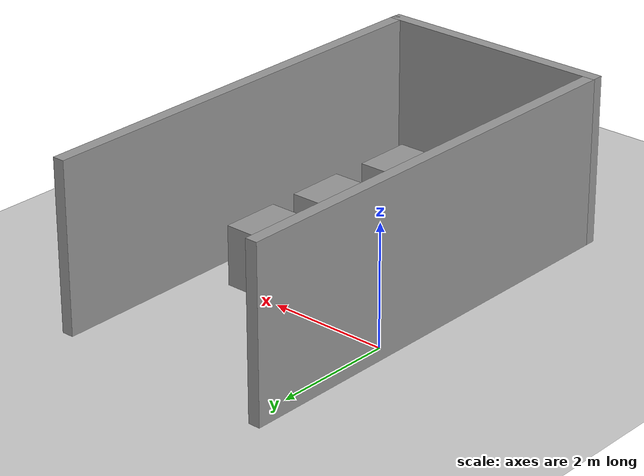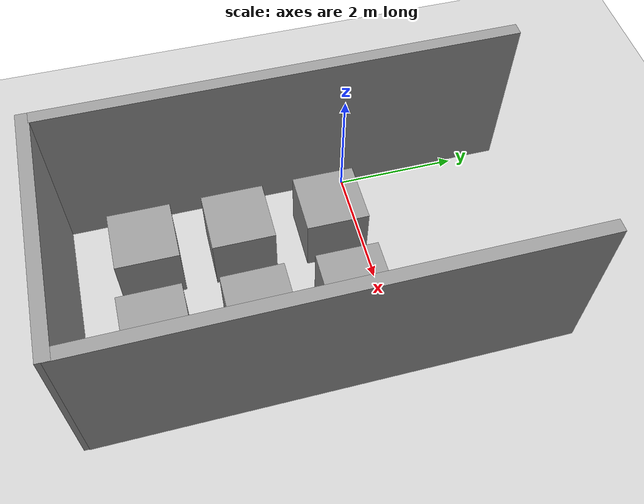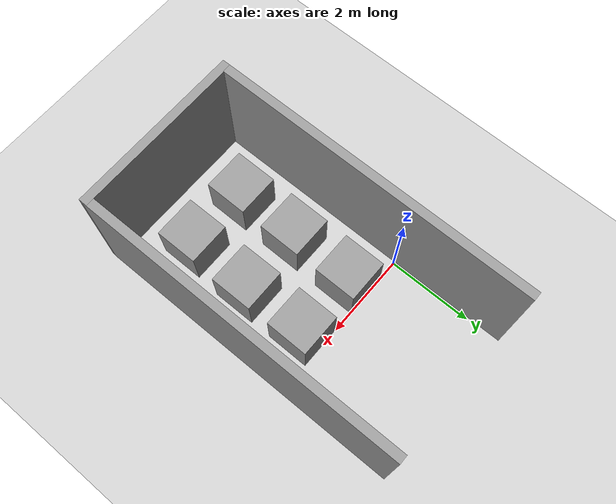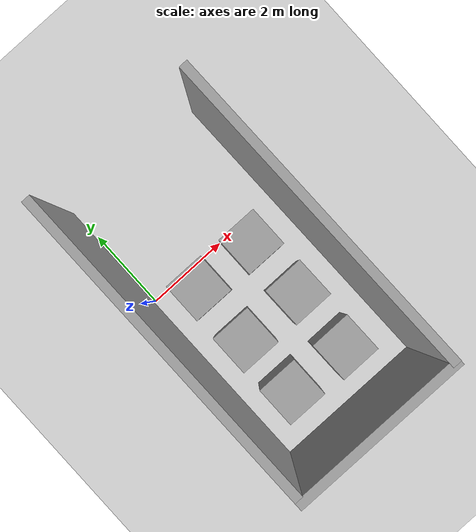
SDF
<sdf version="1.6">
 <world name="default">
  <light name="sun" type="directional">
   <pose>0 0 10 0 -0 0</pose>
   <diffuse>0.8 0.8 0.8 1</diffuse>
   <specular>0.2 0.2 0.2 1</specular>
   <attenuation>
    <range>1000</range>
    <constant>0.9</constant>
    <linear>0.01</linear>
    <quadratic>0.001</quadratic>
   </attenuation>
   <direction>-0.5 0.1 -0.9</direction>
  </light>
  <model name="ground_plane">
   <static>1</static>
   <link name="link">
    <collision name="collision">
     <geometry><plane><normal>0 0 1</normal><size>100 100</size></plane></geometry>
     <surface><friction><ode><mu>100</mu><mu2>50</mu2></ode></friction></surface>
    </collision>
    <visual name="visual">
     <cast_shadows>0</cast_shadows>
     <geometry><plane><normal>0 0 1</normal><size>100 100</size></plane></geometry>
     <material>
      <script><uri>file://media/materials/scripts/gazebo.material</uri><name>Gazebo/Grey</name></script>
     </material>
    </visual>
   </link>
  </model>
  <gravity>0 0 -9.8</gravity>
  <magnetic_field>6e-06 2.3e-05 -4.2e-05</magnetic_field>
  <atmosphere type="adiabatic"/>
  <physics name="default_physics" default="0" type="ode">
   <max_step_size>0.001</max_step_size>
   <real_time_factor>1</real_time_factor>
   <real_time_update_rate>1000</real_time_update_rate>
  </physics>
  <scene><ambient>0.4 0.4 0.4 1</ambient><background>0.7 0.7 0.7 1</background><shadows>1</shadows></scene>
  <audio><device>default</device></audio>
  <spherical_coordinates>
   <surface_model>EARTH_WGS84</surface_model>
   <latitude_deg>0</latitude_deg>
   <longitude_deg>0</longitude_deg>
   <elevation>0</elevation>
   <heading_deg>0</heading_deg>
  </spherical_coordinates>
  <model name="unit_box">
   <pose>1 -0.493799 0.499995 -1e-05 0 0</pose>
   <link name="link">
    <inertial>
     <mass>1</mass>
     <inertia>
      <ixx>0.166667</ixx>
      <ixy>0</ixy>
      <ixz>0</ixz>
      <iyy>0.166667</iyy>
      <iyz>0</iyz>
      <izz>0.166667</izz>
     </inertia>
    </inertial>
    <collision name="collision"><geometry><box><size>1 1 1</size></box></geometry></collision>
    <visual name="visual">
     <geometry><box><size>1 1 1</size></box></geometry>
     <material>
      <script><name>Gazebo/Grey</name><uri>file://media/materials/scripts/gazebo.material</uri></script>
     </material>
    </visual>
   </link>
  </model>
  <model name="unit_box_0">
   <pose>0.999995 -2 0.499995 0 -1e-05 0</pose>
   <link name="link">
    <inertial>
     <mass>1</mass>
     <inertia>
      <ixx>0.166667</ixx>
      <ixy>0</ixy>
      <ixz>0</ixz>
      <iyy>0.166667</iyy>
      <iyz>0</iyz>
      <izz>0.166667</izz>
     </inertia>
    </inertial>
    <collision name="collision"><geometry><box><size>1 1 1</size></box></geometry></collision>
    <visual name="visual">
     <geometry><box><size>1 1 1</size></box></geometry>
     <material>
      <script><name>Gazebo/Grey</name><uri>file://media/materials/scripts/gazebo.material</uri></script>
     </material>
    </visual>
   </link>
  </model>
  <model name="unit_box_1">
   <pose>1 -3.50146 0.499995 -1e-05 0 0</pose>
   <link name="link">
    <inertial>
     <mass>1</mass>
     <inertia>
      <ixx>0.166667</ixx>
      <ixy>0</ixy>
      <ixz>0</ixz>
      <iyy>0.166667</iyy>
      <iyz>0</iyz>
      <izz>0.166667</izz>
     </inertia>
    </inertial>
    <collision name="collision"><geometry><box><size>1 1 1</size></box></geometry></collision>
    <visual name="visual">
     <geometry><box><size>1 1 1</size></box></geometry>
     <material>
      <script><name>Gazebo/Grey</name><uri>file://media/materials/scripts/gazebo.material</uri></script>
     </material>
    </visual>
   </link>
  </model>
  <model name="unit_box_2">
   <pose>2.512 -0.505267 0.499995 0 -1e-05 0</pose>
   <link name="link">
    <inertial>
     <mass>1</mass>
     <inertia>
      <ixx>0.166667</ixx>
      <ixy>0</ixy>
      <ixz>0</ixz>
      <iyy>0.166667</iyy>
      <iyz>0</iyz>
      <izz>0.166667</izz>
     </inertia>
    </inertial>
    <collision name="collision"><geometry><box><size>1 1 1</size></box></geometry></collision>
    <visual name="visual">
     <geometry><box><size>1 1 1</size></box></geometry>
     <material>
      <script><name>Gazebo/Grey</name><uri>file://media/materials/scripts/gazebo.material</uri></script>
     </material>
    </visual>
   </link>
  </model>
  <model name="unit_box_3">
   <pose>2.53013 -1.98967 0.499995 1e-05 -0 0.006442</pose>
   <link name="link">
    <inertial>
     <mass>1</mass>
     <inertia>
      <ixx>0.166667</ixx>
      <ixy>0</ixy>
      <ixz>0</ixz>
      <iyy>0.166667</iyy>
      <iyz>0</iyz>
      <izz>0.166667</izz>
     </inertia>
    </inertial>
    <collision name="collision"><geometry><box><size>1 1 1</size></box></geometry></collision>
    <visual name="visual">
     <geometry><box><size>1 1 1</size></box></geometry>
     <material>
      <script><name>Gazebo/Grey</name><uri>file://media/materials/scripts/gazebo.material</uri></script>
     </material>
    </visual>
   </link>
  </model>
  <model name="unit_box_4">
   <pose>2.49867 -3.54901 0.499995 0 1e-05 0.006063</pose>
   <link name="link">
    <inertial>
     <mass>1</mass>
     <inertia>
      <ixx>0.166667</ixx>
      <ixy>0</ixy>
      <ixz>0</ixz>
      <iyy>0.166667</iyy>
      <iyz>0</iyz>
      <izz>0.166667</izz>
     </inertia>
    </inertial>
    <collision name="collision"><geometry><box><size>1 1 1</size></box></geometry></collision>
    <visual name="visual">
     <geometry><box><size>1 1 1</size></box></geometry>
     <material>
      <script><name>Gazebo/Grey</name><uri>file://media/materials/scripts/gazebo.material</uri></script>
     </material>
    </visual>
   </link>
  </model>
  <model name="grey_wall">
   <static>1</static>
   <link name="link">
    <pose>0 0 1.4 0 -0 0</pose>
    <collision name="collision"><geometry><box><size>7.5 0.2 2.8</size></box></geometry></collision>
    <visual name="visual">
     <cast_shadows>0</cast_shadows>
     <geometry><box><size>7.5 0.2 2.8</size></box></geometry>
     <material>
      <script>
       <uri>model://grey_wall/materials/scripts</uri>
       <uri>model://grey_wall/materials/textures</uri>
       <name>vrc/grey_wall</name>
      </script>
     </material>
    </visual>
   </link>
   <pose>3.68862 -1.05641 0 0 -0 1.57723</pose>
  </model>
  <model name="grey_wall_1">
   <static>1</static>
   <link name="link">
    <pose>0 0 1.4 0 -0 0</pose>
    <collision name="collision"><geometry><box><size>7.5 0.2 2.8</size></box></geometry></collision>
    <visual name="visual">
     <cast_shadows>0</cast_shadows>
     <geometry><box><size>7.5 0.2 2.8</size></box></geometry>
     <material>
      <script>
       <uri>model://grey_wall/materials/scripts</uri>
       <uri>model://grey_wall/materials/textures</uri>
       <name>vrc/grey_wall</name>
      </script>
     </material>
    </visual>
   </link>
   <pose>-0.141883 -0.959384 0 0 0 -1.56811</pose>
  </model>
  <model name="grey_wall_0">
   <link name="link">
    <pose>1.71658 -0.045138 1.4 0 -0 0</pose>
    <inertial>
     <inertia><ixx>0</ixx><ixy>0</ixy><ixz>0</ixz><iyy>0</iyy><iyz>0</iyz><izz>0</izz></inertia>
     <mass>0</mass>
    </inertial>
    <visual name="visual">
     <cast_shadows>0</cast_shadows>
     <geometry><box><size>4.03675 0.2 2.8</size></box></geometry>
     <material>
      <script>
       <uri>model://grey_wall/materials/scripts</uri>
       <uri>model://grey_wall/materials/textures</uri>
       <name>vrc/grey_wall</name>
      </script>
     </material>
    </visual>
    <collision name="collision">
     <geometry><box><size>4.03675 0.2 2.8</size></box></geometry>
     <surface>
      <friction>
       <ode><mu>1</mu><mu2>1</mu2><fdir1>0 0 0</fdir1><slip1>0</slip1><slip2>0</slip2></ode>
       <torsional>
        <coefficient>1</coefficient>
        <patch_radius>0</patch_radius>
        <surface_radius>0</surface_radius>
        <use_patch_radius>1</use_patch_radius>
        <ode><slip>0</slip></ode>
       </torsional>
      </friction>
      <bounce><restitution_coefficient>0</restitution_coefficient><threshold>1e+06</threshold></bounce>
      <contact>
       <collide_without_contact>0</collide_without_contact>
       <collide_without_contact_bitmask>1</collide_without_contact_bitmask>
       <collide_bitmask>1</collide_bitmask>
       <ode>
        <soft_cfm>0</soft_cfm>
        <soft_erp>0.2</soft_erp>
        <kp>1e+13</kp>
        <kd>1</kd>
        <max_vel>0.01</max_vel>
        <min_depth>0</min_depth>
       </ode>
       <bullet>
        <split_impulse>1</split_impulse>
        <split_impulse_penetration_threshold>-0.01</split_impulse_penetration_threshold>
        <soft_cfm>0</soft_cfm>
        <soft_erp>0.2</soft_erp>
        <kp>1e+13</kp>
        <kd>1</kd>
       </bullet>
      </contact>
     </surface>
    </collision>
   </link>
   <static>1</static>
   <pose>0.070587 -4.74294 0 0 -0 0</pose>
  </model>
 </world>
</sdf>
